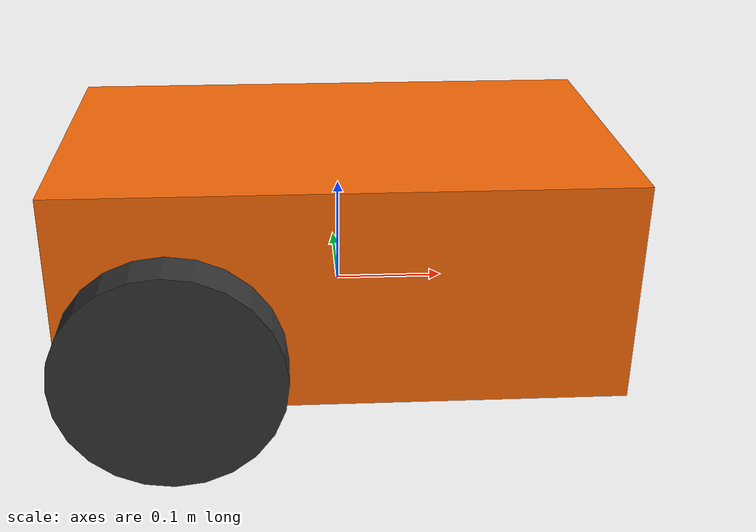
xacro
<?xml version="1.0" ?>
<robot name="simple_robot" xmlns:xacro="http://www.ros.org/wiki/xacro">

  <material name="black">
    <color rgba="0.0 0.0 0.0 1.0"/>
  </material>

  <material name="grey">
    <color rgba="0.2 0.2 0.2 1.0"/>
  </material>

  <material name="orange">
    <color rgba="1.0 0.42 0.03 1.0"/>
  </material>

  <gazebo reference="link_chassis">
    <material>Gazebo/Orange</material>
  </gazebo>

  <gazebo reference="link_left_wheel">
    <material>Gazebo/Grey</material>
  </gazebo>

  <gazebo reference="link_right_wheel">
    <material>Gazebo/Grey</material>
  </gazebo>

  <gazebo>
      <plugin name="differential_drive_controller" filename="libgazebo_ros_diff_drive.so">
        <legacyMode>false</legacyMode>
        <alwaysOn>true</alwaysOn>
        <updateRate>10</updateRate>
        <leftJoint>joint_left_wheel</leftJoint>
        <rightJoint>joint_right_wheel</rightJoint>
        <wheelSeparation>0.5</wheelSeparation>
        <wheelDiameter>0.2</wheelDiameter>
        <torque>10</torque>
        <commandTopic>cmd_vel</commandTopic>
        <odometryTopic>odom</odometryTopic>
        <odometryFrame>odom</odometryFrame>
        <robotBaseFrame>link_chassis</robotBaseFrame>
        <publishWheelTF>true</publishWheelTF>
        <publishOdom>true</publishOdom>
        <publishWheelJointState>true</publishWheelJointState>
      </plugin>
    </gazebo>

    <gazebo reference="display_screen_link">
  <visual>
    <plugin name="display_video_controller" filename="libgazebo_ros_video.so">
      <topicName>image</topicName>
      <height>120</height>
      <width>160</width>
    </plugin>
  </visual>
</gazebo>

  <link name="link_chassis">
    <!-- pose and inertial -->
    <pose>0 0 0.1 0 0 0</pose>
    <inertial>
      <mass value="5"/>
      <origin rpy="0 0 0" xyz="0 0 0.15"/>
      <inertia ixx="0.03954167" ixy="0" ixz="0"
               iyy="0.10620833" iyz="0"
               izz="0.10620833"/>
    </inertial>
    <!-- body -->
    <collision name="collision_chassis">
      <geometry>
        <box size="0.5 0.3 0.2"/>
      </geometry>
    </collision>
    <visual>
      <origin rpy="0 0 0" xyz="0 0 0.05"/>
      <geometry>
        <box size="0.5 0.3 0.2"/>
      </geometry>
      <material name="orange"/>
    </visual>
    <!-- caster front -->
    <collision name="caster_front_collision">
      <origin rpy=" 0 0 0" xyz="0.3 0 -0.05"/>
      <geometry>
        <sphere radius="0.05"/>
      </geometry>
      <surface>
        <friction>
          <ode>
            <mu>0</mu>
            <mu2>0</mu2>
            <slip1>1.0</slip1>
            <slip2>1.0</slip2>
          </ode>
        </friction>
      </surface>
    </collision>
    <visual name="caster_front_visual">
      <origin rpy=" 0 0 0" xyz="0.175 0 -0.05"/>
      <geometry>
        <sphere radius="0.05"/>
      </geometry>
      <material name="black"/>
    </visual>
  </link>

  <link name="link_right_wheel">
    <inertial>
      <mass value="0.2"/>
      <origin rpy="0 1.5707 1.5707" xyz="0 0 0"/>
      <inertia ixx="0.0005267" ixy="0" ixz="0" iyy="0.0005267" iyz="0" izz="0.001"/>
    </inertial>
    <collision name="link_right_wheel_collision">
      <origin rpy="0 1.5707 1.5707" xyz="0 0 0"/>
      <geometry>
        <cylinder length="0.04" radius="0.1"/>
      </geometry>
    </collision>
    <visual name="link_right_wheel_visual">
      <origin rpy="0 1.5707 1.5707" xyz="0 0 0"/>
      <geometry>
        <cylinder length="0.04" radius="0.1"/>
      </geometry>
      <material name="grey" />
    </visual>
  </link>

  <link name="link_left_wheel">
    <inertial>
      <mass value="0.2"/>
      <origin rpy="0 1.5707 1.5707" xyz="0 0 0"/>
      <inertia ixx="0.0005267" ixy="0" ixz="0" iyy="0.0005267" iyz="0" izz="0.001"/>
    </inertial>
    <collision name="link_left_wheel_collision">
      <origin rpy="0 1.5707 1.5707" xyz="0 0 0"/>
      <geometry>
        <cylinder length="0.04" radius="0.1"/>
      </geometry>
    </collision>
    <visual name="link_left_wheel_visual">
      <origin rpy="0 1.5707 1.5707" xyz="0 0 0"/>
      <geometry>
        <cylinder length="0.04" radius="0.1"/>
      </geometry>
      <material name="grey" />
    </visual>
  </link>

  <joint name="joint_right_wheel" type="continuous">
    <origin rpy="0 0 0" xyz="-0.15 0.175 0"/>
    <child link="link_right_wheel"/>
    <parent link="link_chassis"/>
    <axis rpy="0 0 0" xyz="0 1 0"/>
    <limit effort="10000" velocity="1000"/>
    <joint_properties damping="1.0" friction="1.0"/>
  </joint>

  <joint name="joint_left_wheel" type="continuous">
    <origin rpy="0 0 0" xyz="-0.15 -0.175 0"/>
    <child link="link_left_wheel"/>
    <parent link="link_chassis"/>
    <axis rpy="0 0 0" xyz="0 1 0"/>
    <limit effort="10000" velocity="1000"/>
    <joint_properties damping="1.0" friction="1.0"/>
  </joint>

</robot>
